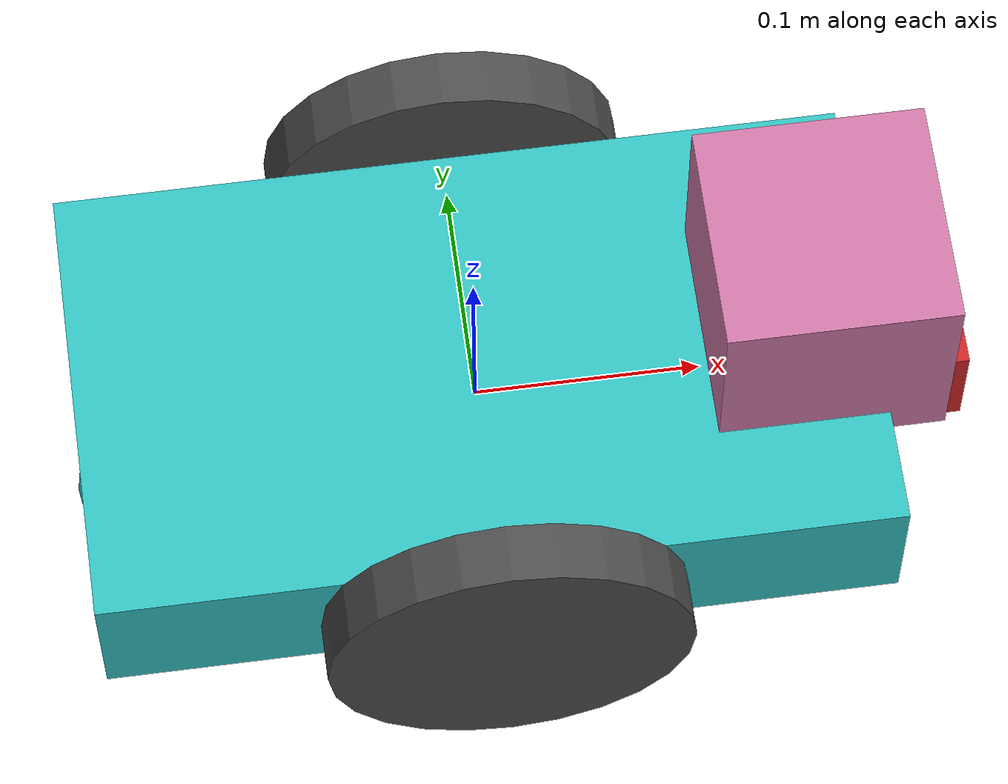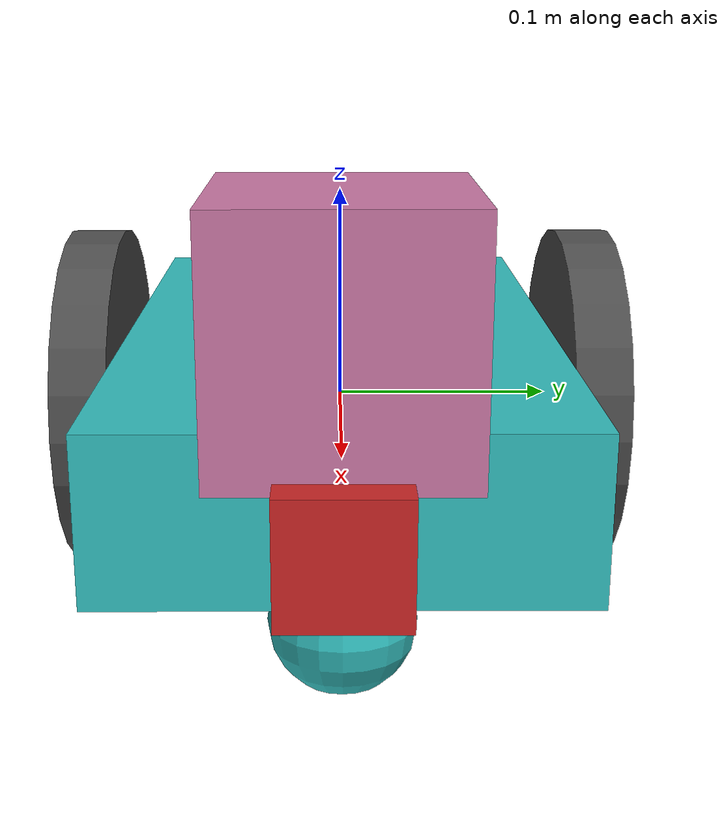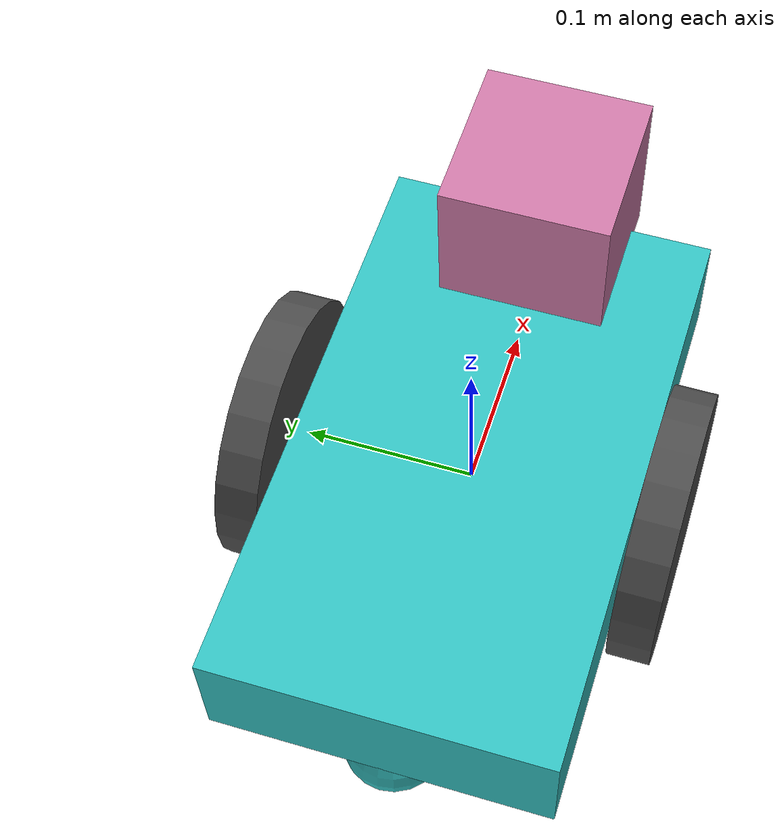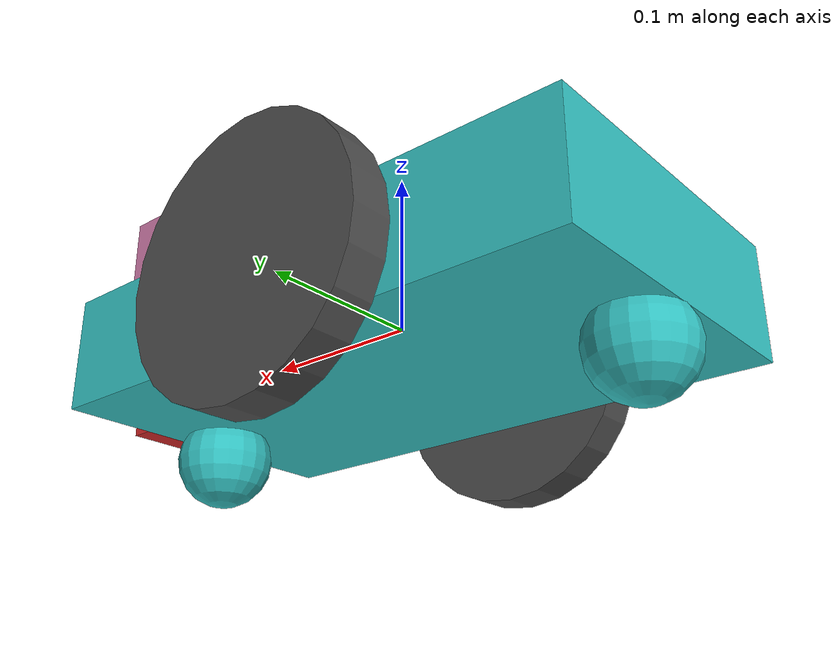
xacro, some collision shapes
<?xml version='1.0'?>

<robot name="my_robot" xmlns:xacro="http://www.ros.org/wiki/xacro">

  <xacro:include filename="$(find my_robot)/urdf/my_robot.gazebo" />
  <link name="robot_footprint"></link>

  <joint name="robot_footprint_joint" type="fixed">
    <origin xyz="0 0 0" rpy="0 0 0" />
    <parent link="robot_footprint"/>
    <child link="chassis" />
  </joint>

  <link name='chassis'>
    <pose>0 0 0.3 0 0 0</pose>

    <inertial>
      <mass value="15.0"/>
      <origin xyz="0.0 0 0" rpy=" 0 0 0"/>
      <inertia
          ixx="0.1" ixy="0" ixz="0"
          iyy="0.1" iyz="0"
          izz="0.1"
      />
    </inertial>

    <collision name='collision'>
      <origin xyz="0 0 0" rpy=" 0 0 0"/>
      <geometry>
        <box size=".35 .2 .07"/>
      </geometry>
    </collision>

    <visual name='chassis_visual'>
      <origin xyz="0 0 0" rpy=" 0 0 0"/>
      <geometry>
        <box size=".35 .2 .07"/>
      </geometry>
    </visual>

    <collision name='back_caster_collision'>
      <origin xyz="-0.15 0 -0.05" rpy=" 0 0 0"/>
      <geometry>
        <sphere radius="0.0298"/>
      </geometry>
    </collision>

    <visual name='back_caster_visual'>
      <origin xyz="-0.15 0 -0.05" rpy=" 0 0 0"/>
      <geometry>
        <sphere radius="0.0298"/>
      </geometry>
    </visual>

    <collision name='front_caster_collision'>
      <origin xyz="0.15 0 -0.05" rpy=" 0 0 0"/>
      <geometry>
        <sphere radius="0.0298"/>
      </geometry>
    </collision>

    <visual name='front_caster_visual'>
      <origin xyz="0.15 0 -0.05" rpy=" 0 0 0"/>
      <geometry>
        <sphere radius="0.0298"/>
      </geometry>
    </visual>

  </link>

  <joint type="continuous" name="left_wheel_hinge">
    <origin xyz="0 0.115 0" rpy="0 0 0"/>
    <child link="left_wheel"/>
    <parent link="chassis"/>
    <axis xyz="0 1 0" rpy="0 0 0"/>
    <limit effort="10000" velocity="1000"/>
    <dynamics damping="1.0" friction="1.0"/>
  </joint>

  <link name="left_wheel">

    <inertial>
      <mass value="5.0"/>
      <origin xyz="0.0 0 0" rpy=" 0 1.5707 1.5707"/>
      <inertia
          ixx="0.1" ixy="0" ixz="0"
          iyy="0.1" iyz="0"
          izz="0.1"
      />
    </inertial>

    <visual>
      <origin xyz="0 0 0" rpy="0 1.5707 1.5707"/>
      <geometry>
        <cylinder length="0.025" radius="0.08"/>
      </geometry>
    </visual>

    <collision>
      <origin xyz="0 0 0" rpy="0 1.5707 1.5707"/>
      <geometry>
        <cylinder length="0.025" radius="0.08"/>
      </geometry>
    </collision>

  </link>

  <joint type="continuous" name="right_wheel_hinge">
    <origin xyz="0 -0.115 0" rpy="0 0 0"/>
    <child link="right_wheel"/>
    <parent link="chassis"/>
    <axis xyz="0 1 0" rpy="0 0 0"/>
    <limit effort="10000" velocity="1000"/>
    <dynamics damping="1.0" friction="1.0"/>
  </joint>

  <link name="right_wheel">

    <inertial>
      <mass value="5.0"/>
      <origin xyz="0.0 0 0" rpy=" 0 1.5707 1.5707"/>
      <inertia
          ixx="0.1" ixy="0" ixz="0"
          iyy="0.1" iyz="0"
          izz="0.1"
      />
    </inertial>

    <visual>
      <origin xyz="0 0 0" rpy="0 1.5707 1.5707"/>
      <geometry>
        <cylinder length="0.025" radius="0.08"/>
      </geometry>
    </visual>

    <collision>
      <origin xyz="0 0 0" rpy="0 1.5707 1.5707"/>
      <geometry>
        <cylinder length="0.025" radius="0.08"/>
      </geometry>
    </collision>

  </link>

  <joint type="fixed" name="camera_joint">
    <origin xyz="0.19 0 0" rpy="0 0 0"/>
    <child link="camera"/>
    <parent link="chassis"/>
    <axis xyz="0 1 0" rpy="0 0 0"/>
  </joint>

  <link name="camera">
    <inertial>
      <mass value="0.1"/>
      <origin xyz="0.0 0 0" rpy="0 0 0"/>
      <inertia
          ixx="1e-6" ixy="0" ixz="0"
          iyy="1e-6" iyz="0"
          izz="1e-6"
      />
      <box_inertia m="0.1" x="0.05" y="0.05" z="0.05"/>
    </inertial>

    <visual>
      <origin xyz="0 0 0" rpy="0 0 0"/>
      <geometry>
        <box size="0.05 0.05 0.05"/>
      </geometry>
    </visual>

    <collision>
      <origin xyz="0 0 0" rpy="0 0 0"/>
      <geometry>
        <box size="0.05 0.05 0.05"/>
      </geometry>
    </collision>

  </link>

  <joint name="camera_optical_joint" type="fixed">
    <origin xyz="0 0 0" rpy="-1.5707 0 -1.5707"/>
    <parent link="camera"/>
    <child link="camera_link_optical"/>
  </joint>

  <link name="camera_link_optical">
  </link>

  <joint type="fixed" name="hokuyo_joint">
    <origin xyz="0.15 0 0.07" rpy="0 0 0"/>
    <child link="hokuyo"/>
    <parent link="chassis"/>
    <axis xyz="0 1 0" rpy="0 0 0"/>
  </joint>

  <link name="hokuyo">

    <inertial>
      <mass value="1e-5"/>
      <origin xyz="0.0 0 0" rpy="0 0 0"/>
      <inertia
          ixx="1e-6" ixy="0" ixz="0"
          iyy="1e-6" iyz="0"
          izz="1e-6"
      />
    </inertial>

    <visual>
      <origin xyz="0 0 0" rpy="0 0 0"/>
      <geometry>
        <mesh filename="package://my_robot/meshes/hokuyo.dae"/>
      </geometry>
    </visual>

    <collision>
      <origin xyz="0 0 0" rpy="0 0 0"/>
      <geometry>
        <box size="0.1 0.1 0.1"/>
      </geometry>
    </collision>

  </link>

  <gazebo reference="chassis">
    <material>Gazebo/Turquoise</material>
  </gazebo>

  <gazebo reference="left_wheel">
    <material>Gazebo/DarkGrey</material>
  </gazebo>

  <gazebo reference="right_wheel">
    <material>Gazebo/DarkGrey</material>
  </gazebo>

  <gazebo reference="camera">
    <material>Gazebo/RedBright</material>
  </gazebo>

</robot>
